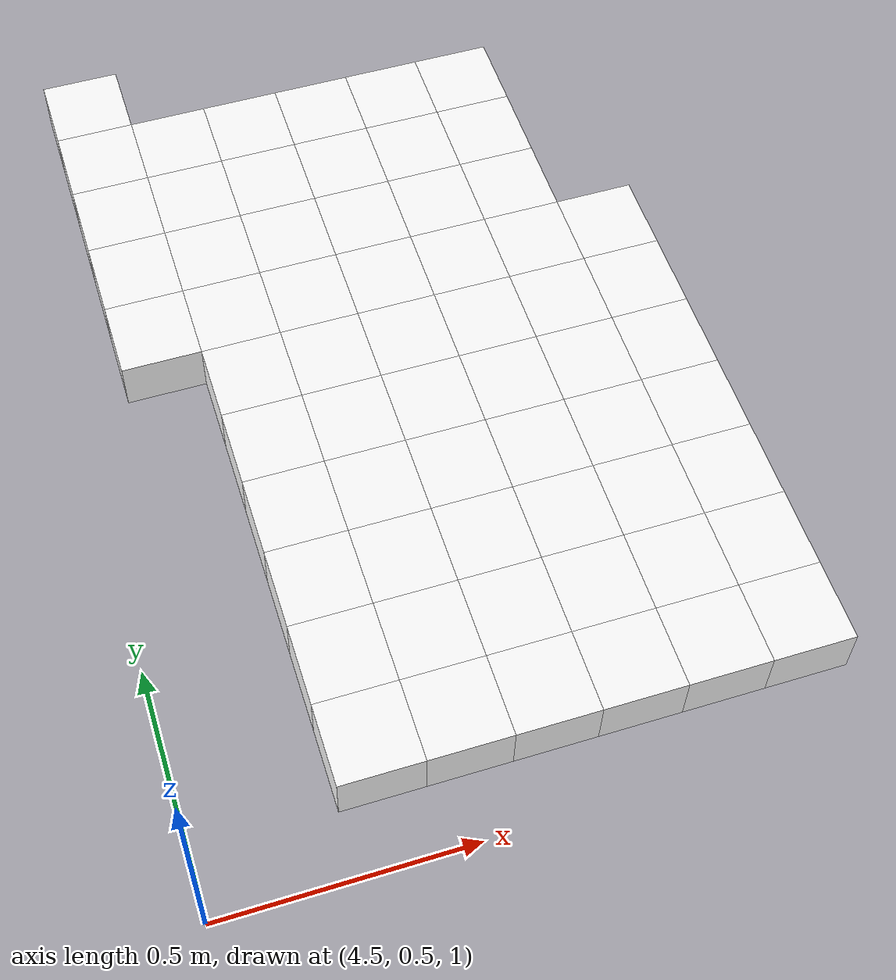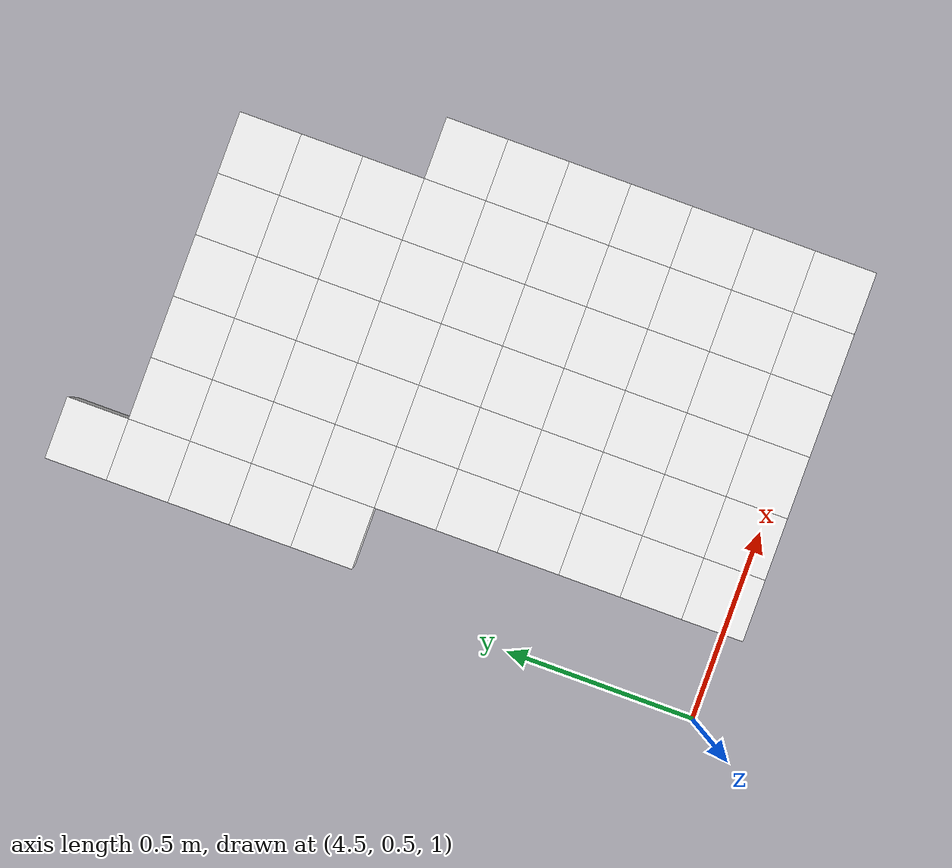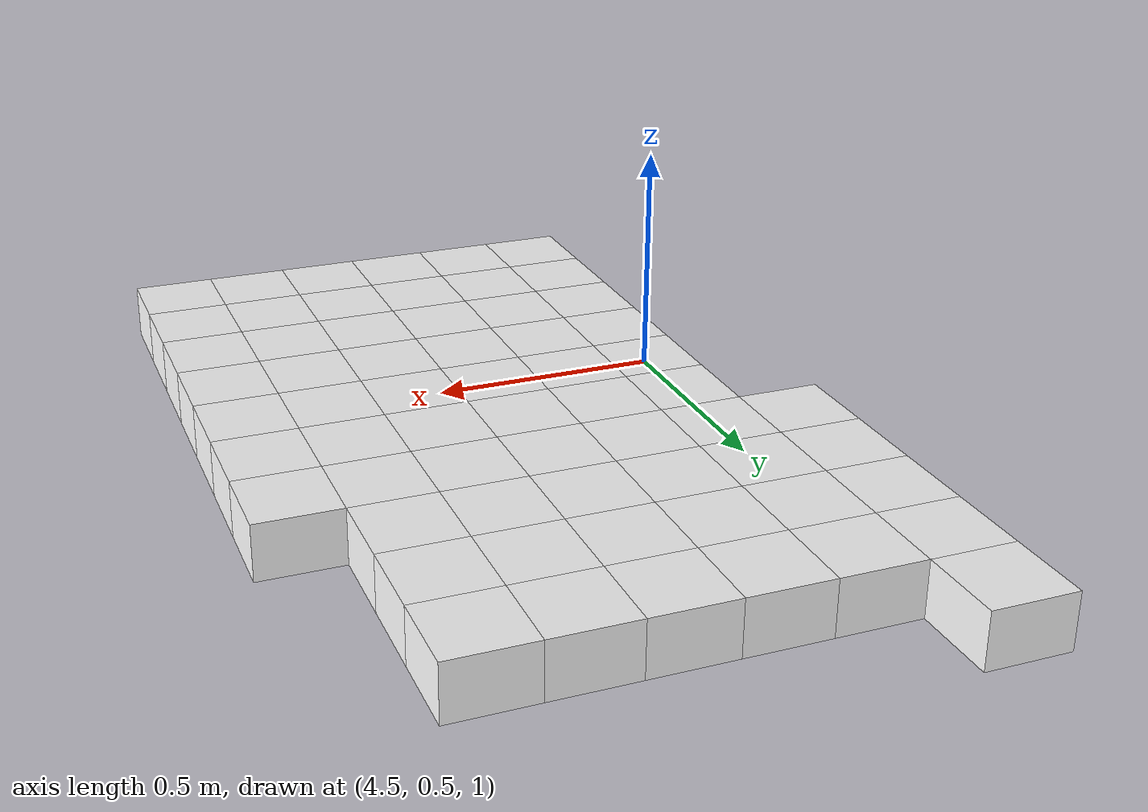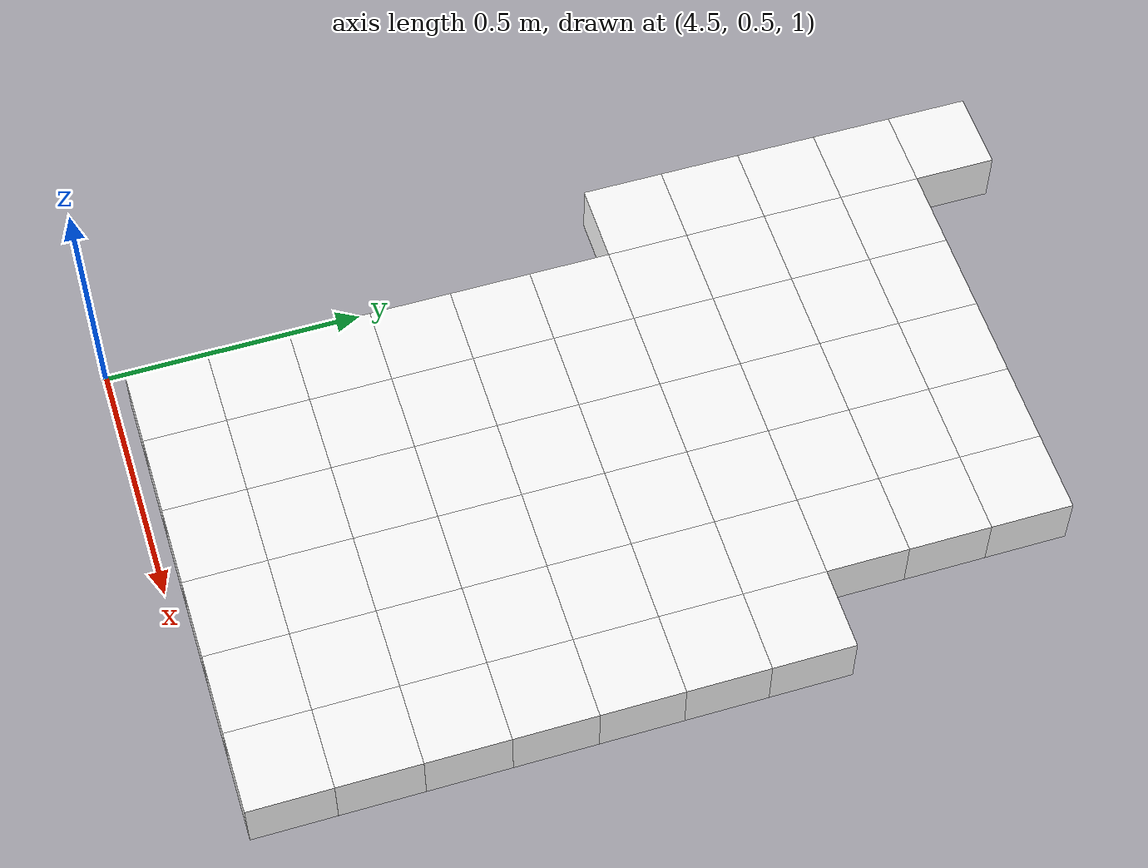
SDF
<sdf version="1.7">
 <world name="default">
  <include><uri>model://sun</uri></include>
  <model name="static_environment">
   <static>true</static>
   <link name="region_808">
    <pose>4.825000000000003 0.6 1.3 0.0 0.0 0.0</pose>
    <collision name="region_808_collision">
     <geometry><box><size>0.15 0.15 0.1</size></box></geometry>
     <surface><friction><ode><mu>1.0</mu><mu2>1.0</mu2></ode></friction></surface>
    </collision>
    <visual name="region_808_visual">
     <geometry><box><size>0.15 0.15 0.1</size></box></geometry>
     <material><ambient>1.0 1.0 1.0 1.0</ambient><diffuse>1.0 1.0 1.0 1.0</diffuse></material>
    </visual>
   </link>
   <link name="region_809">
    <pose>4.975000000000003 0.6 1.3 0.0 0.0 0.0</pose>
    <collision name="region_809_collision">
     <geometry><box><size>0.15 0.15 0.1</size></box></geometry>
     <surface><friction><ode><mu>1.0</mu><mu2>1.0</mu2></ode></friction></surface>
    </collision>
    <visual name="region_809_visual">
     <geometry><box><size>0.15 0.15 0.1</size></box></geometry>
     <material><ambient>1.0 1.0 1.0 1.0</ambient><diffuse>1.0 1.0 1.0 1.0</diffuse></material>
    </visual>
   </link>
   <link name="region_810">
    <pose>5.1250000000000036 0.6 1.3 0.0 0.0 0.0</pose>
    <collision name="region_810_collision">
     <geometry><box><size>0.15 0.15 0.1</size></box></geometry>
     <surface><friction><ode><mu>1.0</mu><mu2>1.0</mu2></ode></friction></surface>
    </collision>
    <visual name="region_810_visual">
     <geometry><box><size>0.15 0.15 0.1</size></box></geometry>
     <material><ambient>1.0 1.0 1.0 1.0</ambient><diffuse>1.0 1.0 1.0 1.0</diffuse></material>
    </visual>
   </link>
   <link name="region_811">
    <pose>5.275000000000004 0.6 1.3 0.0 0.0 0.0</pose>
    <collision name="region_811_collision">
     <geometry><box><size>0.15 0.15 0.1</size></box></geometry>
     <surface><friction><ode><mu>1.0</mu><mu2>1.0</mu2></ode></friction></surface>
    </collision>
    <visual name="region_811_visual">
     <geometry><box><size>0.15 0.15 0.1</size></box></geometry>
     <material><ambient>1.0 1.0 1.0 1.0</ambient><diffuse>1.0 1.0 1.0 1.0</diffuse></material>
    </visual>
   </link>
   <link name="region_812">
    <pose>5.425000000000004 0.6 1.3 0.0 0.0 0.0</pose>
    <collision name="region_812_collision">
     <geometry><box><size>0.15 0.15 0.1</size></box></geometry>
     <surface><friction><ode><mu>1.0</mu><mu2>1.0</mu2></ode></friction></surface>
    </collision>
    <visual name="region_812_visual">
     <geometry><box><size>0.15 0.15 0.1</size></box></geometry>
     <material><ambient>1.0 1.0 1.0 1.0</ambient><diffuse>1.0 1.0 1.0 1.0</diffuse></material>
    </visual>
   </link>
   <link name="region_813">
    <pose>5.575000000000005 0.6 1.3 0.0 0.0 0.0</pose>
    <collision name="region_813_collision">
     <geometry><box><size>0.15 0.15 0.1</size></box></geometry>
     <surface><friction><ode><mu>1.0</mu><mu2>1.0</mu2></ode></friction></surface>
    </collision>
    <visual name="region_813_visual">
     <geometry><box><size>0.15 0.15 0.1</size></box></geometry>
     <material><ambient>1.0 1.0 1.0 1.0</ambient><diffuse>1.0 1.0 1.0 1.0</diffuse></material>
    </visual>
   </link>
   <link name="region_828">
    <pose>4.825000000000003 0.75 1.3 0.0 0.0 0.0</pose>
    <collision name="region_828_collision">
     <geometry><box><size>0.15 0.15 0.1</size></box></geometry>
     <surface><friction><ode><mu>1.0</mu><mu2>1.0</mu2></ode></friction></surface>
    </collision>
    <visual name="region_828_visual">
     <geometry><box><size>0.15 0.15 0.1</size></box></geometry>
     <material><ambient>1.0 1.0 1.0 1.0</ambient><diffuse>1.0 1.0 1.0 1.0</diffuse></material>
    </visual>
   </link>
   <link name="region_829">
    <pose>4.975000000000003 0.75 1.3 0.0 0.0 0.0</pose>
    <collision name="region_829_collision">
     <geometry><box><size>0.15 0.15 0.1</size></box></geometry>
     <surface><friction><ode><mu>1.0</mu><mu2>1.0</mu2></ode></friction></surface>
    </collision>
    <visual name="region_829_visual">
     <geometry><box><size>0.15 0.15 0.1</size></box></geometry>
     <material><ambient>1.0 1.0 1.0 1.0</ambient><diffuse>1.0 1.0 1.0 1.0</diffuse></material>
    </visual>
   </link>
   <link name="region_830">
    <pose>5.1250000000000036 0.75 1.3 0.0 0.0 0.0</pose>
    <collision name="region_830_collision">
     <geometry><box><size>0.15 0.15 0.1</size></box></geometry>
     <surface><friction><ode><mu>1.0</mu><mu2>1.0</mu2></ode></friction></surface>
    </collision>
    <visual name="region_830_visual">
     <geometry><box><size>0.15 0.15 0.1</size></box></geometry>
     <material><ambient>1.0 1.0 1.0 1.0</ambient><diffuse>1.0 1.0 1.0 1.0</diffuse></material>
    </visual>
   </link>
   <link name="region_831">
    <pose>5.275000000000004 0.75 1.3 0.0 0.0 0.0</pose>
    <collision name="region_831_collision">
     <geometry><box><size>0.15 0.15 0.1</size></box></geometry>
     <surface><friction><ode><mu>1.0</mu><mu2>1.0</mu2></ode></friction></surface>
    </collision>
    <visual name="region_831_visual">
     <geometry><box><size>0.15 0.15 0.1</size></box></geometry>
     <material><ambient>1.0 1.0 1.0 1.0</ambient><diffuse>1.0 1.0 1.0 1.0</diffuse></material>
    </visual>
   </link>
   <link name="region_832">
    <pose>5.425000000000004 0.75 1.3 0.0 0.0 0.0</pose>
    <collision name="region_832_collision">
     <geometry><box><size>0.15 0.15 0.1</size></box></geometry>
     <surface><friction><ode><mu>1.0</mu><mu2>1.0</mu2></ode></friction></surface>
    </collision>
    <visual name="region_832_visual">
     <geometry><box><size>0.15 0.15 0.1</size></box></geometry>
     <material><ambient>1.0 1.0 1.0 1.0</ambient><diffuse>1.0 1.0 1.0 1.0</diffuse></material>
    </visual>
   </link>
   <link name="region_833">
    <pose>5.575000000000005 0.75 1.3 0.0 0.0 0.0</pose>
    <collision name="region_833_collision">
     <geometry><box><size>0.15 0.15 0.1</size></box></geometry>
     <surface><friction><ode><mu>1.0</mu><mu2>1.0</mu2></ode></friction></surface>
    </collision>
    <visual name="region_833_visual">
     <geometry><box><size>0.15 0.15 0.1</size></box></geometry>
     <material><ambient>1.0 1.0 1.0 1.0</ambient><diffuse>1.0 1.0 1.0 1.0</diffuse></material>
    </visual>
   </link>
   <link name="region_848">
    <pose>4.825000000000003 0.8999999999999999 1.3 0.0 0.0 0.0</pose>
    <collision name="region_848_collision">
     <geometry><box><size>0.15 0.15 0.1</size></box></geometry>
     <surface><friction><ode><mu>1.0</mu><mu2>1.0</mu2></ode></friction></surface>
    </collision>
    <visual name="region_848_visual">
     <geometry><box><size>0.15 0.15 0.1</size></box></geometry>
     <material><ambient>1.0 1.0 1.0 1.0</ambient><diffuse>1.0 1.0 1.0 1.0</diffuse></material>
    </visual>
   </link>
   <link name="region_849">
    <pose>4.975000000000003 0.8999999999999999 1.3 0.0 0.0 0.0</pose>
    <collision name="region_849_collision">
     <geometry><box><size>0.15 0.15 0.1</size></box></geometry>
     <surface><friction><ode><mu>1.0</mu><mu2>1.0</mu2></ode></friction></surface>
    </collision>
    <visual name="region_849_visual">
     <geometry><box><size>0.15 0.15 0.1</size></box></geometry>
     <material><ambient>1.0 1.0 1.0 1.0</ambient><diffuse>1.0 1.0 1.0 1.0</diffuse></material>
    </visual>
   </link>
   <link name="region_850">
    <pose>5.1250000000000036 0.8999999999999999 1.3 0.0 0.0 0.0</pose>
    <collision name="region_850_collision">
     <geometry><box><size>0.15 0.15 0.1</size></box></geometry>
     <surface><friction><ode><mu>1.0</mu><mu2>1.0</mu2></ode></friction></surface>
    </collision>
    <visual name="region_850_visual">
     <geometry><box><size>0.15 0.15 0.1</size></box></geometry>
     <material><ambient>1.0 1.0 1.0 1.0</ambient><diffuse>1.0 1.0 1.0 1.0</diffuse></material>
    </visual>
   </link>
   <link name="region_851">
    <pose>5.275000000000004 0.8999999999999999 1.3 0.0 0.0 0.0</pose>
    <collision name="region_851_collision">
     <geometry><box><size>0.15 0.15 0.1</size></box></geometry>
     <surface><friction><ode><mu>1.0</mu><mu2>1.0</mu2></ode></friction></surface>
    </collision>
    <visual name="region_851_visual">
     <geometry><box><size>0.15 0.15 0.1</size></box></geometry>
     <material><ambient>1.0 1.0 1.0 1.0</ambient><diffuse>1.0 1.0 1.0 1.0</diffuse></material>
    </visual>
   </link>
   <link name="region_852">
    <pose>5.425000000000004 0.8999999999999999 1.3 0.0 0.0 0.0</pose>
    <collision name="region_852_collision">
     <geometry><box><size>0.15 0.15 0.1</size></box></geometry>
     <surface><friction><ode><mu>1.0</mu><mu2>1.0</mu2></ode></friction></surface>
    </collision>
    <visual name="region_852_visual">
     <geometry><box><size>0.15 0.15 0.1</size></box></geometry>
     <material><ambient>1.0 1.0 1.0 1.0</ambient><diffuse>1.0 1.0 1.0 1.0</diffuse></material>
    </visual>
   </link>
   <link name="region_853">
    <pose>5.575000000000005 0.8999999999999999 1.3 0.0 0.0 0.0</pose>
    <collision name="region_853_collision">
     <geometry><box><size>0.15 0.15 0.1</size></box></geometry>
     <surface><friction><ode><mu>1.0</mu><mu2>1.0</mu2></ode></friction></surface>
    </collision>
    <visual name="region_853_visual">
     <geometry><box><size>0.15 0.15 0.1</size></box></geometry>
     <material><ambient>1.0 1.0 1.0 1.0</ambient><diffuse>1.0 1.0 1.0 1.0</diffuse></material>
    </visual>
   </link>
   <link name="region_868">
    <pose>4.825000000000003 1.0499999999999998 1.3 0.0 0.0 0.0</pose>
    <collision name="region_868_collision">
     <geometry><box><size>0.15 0.15 0.1</size></box></geometry>
     <surface><friction><ode><mu>1.0</mu><mu2>1.0</mu2></ode></friction></surface>
    </collision>
    <visual name="region_868_visual">
     <geometry><box><size>0.15 0.15 0.1</size></box></geometry>
     <material><ambient>1.0 1.0 1.0 1.0</ambient><diffuse>1.0 1.0 1.0 1.0</diffuse></material>
    </visual>
   </link>
   <link name="region_869">
    <pose>4.975000000000003 1.0499999999999998 1.3 0.0 0.0 0.0</pose>
    <collision name="region_869_collision">
     <geometry><box><size>0.15 0.15 0.1</size></box></geometry>
     <surface><friction><ode><mu>1.0</mu><mu2>1.0</mu2></ode></friction></surface>
    </collision>
    <visual name="region_869_visual">
     <geometry><box><size>0.15 0.15 0.1</size></box></geometry>
     <material><ambient>1.0 1.0 1.0 1.0</ambient><diffuse>1.0 1.0 1.0 1.0</diffuse></material>
    </visual>
   </link>
   <link name="region_870">
    <pose>5.1250000000000036 1.0499999999999998 1.3 0.0 0.0 0.0</pose>
    <collision name="region_870_collision">
     <geometry><box><size>0.15 0.15 0.1</size></box></geometry>
     <surface><friction><ode><mu>1.0</mu><mu2>1.0</mu2></ode></friction></surface>
    </collision>
    <visual name="region_870_visual">
     <geometry><box><size>0.15 0.15 0.1</size></box></geometry>
     <material><ambient>1.0 1.0 1.0 1.0</ambient><diffuse>1.0 1.0 1.0 1.0</diffuse></material>
    </visual>
   </link>
   <link name="region_871">
    <pose>5.275000000000004 1.0499999999999998 1.3 0.0 0.0 0.0</pose>
    <collision name="region_871_collision">
     <geometry><box><size>0.15 0.15 0.1</size></box></geometry>
     <surface><friction><ode><mu>1.0</mu><mu2>1.0</mu2></ode></friction></surface>
    </collision>
    <visual name="region_871_visual">
     <geometry><box><size>0.15 0.15 0.1</size></box></geometry>
     <material><ambient>1.0 1.0 1.0 1.0</ambient><diffuse>1.0 1.0 1.0 1.0</diffuse></material>
    </visual>
   </link>
   <link name="region_872">
    <pose>5.425000000000004 1.0499999999999998 1.3 0.0 0.0 0.0</pose>
    <collision name="region_872_collision">
     <geometry><box><size>0.15 0.15 0.1</size></box></geometry>
     <surface><friction><ode><mu>1.0</mu><mu2>1.0</mu2></ode></friction></surface>
    </collision>
    <visual name="region_872_visual">
     <geometry><box><size>0.15 0.15 0.1</size></box></geometry>
     <material><ambient>1.0 1.0 1.0 1.0</ambient><diffuse>1.0 1.0 1.0 1.0</diffuse></material>
    </visual>
   </link>
   <link name="region_873">
    <pose>5.575000000000005 1.0499999999999998 1.3 0.0 0.0 0.0</pose>
    <collision name="region_873_collision">
     <geometry><box><size>0.15 0.15 0.1</size></box></geometry>
     <surface><friction><ode><mu>1.0</mu><mu2>1.0</mu2></ode></friction></surface>
    </collision>
    <visual name="region_873_visual">
     <geometry><box><size>0.15 0.15 0.1</size></box></geometry>
     <material><ambient>1.0 1.0 1.0 1.0</ambient><diffuse>1.0 1.0 1.0 1.0</diffuse></material>
    </visual>
   </link>
   <link name="region_888">
    <pose>4.825000000000003 1.2 1.3 0.0 0.0 0.0</pose>
    <collision name="region_888_collision">
     <geometry><box><size>0.15 0.15 0.1</size></box></geometry>
     <surface><friction><ode><mu>1.0</mu><mu2>1.0</mu2></ode></friction></surface>
    </collision>
    <visual name="region_888_visual">
     <geometry><box><size>0.15 0.15 0.1</size></box></geometry>
     <material><ambient>1.0 1.0 1.0 1.0</ambient><diffuse>1.0 1.0 1.0 1.0</diffuse></material>
    </visual>
   </link>
   <link name="region_889">
    <pose>4.975000000000003 1.2 1.3 0.0 0.0 0.0</pose>
    <collision name="region_889_collision">
     <geometry><box><size>0.15 0.15 0.1</size></box></geometry>
     <surface><friction><ode><mu>1.0</mu><mu2>1.0</mu2></ode></friction></surface>
    </collision>
    <visual name="region_889_visual">
     <geometry><box><size>0.15 0.15 0.1</size></box></geometry>
     <material><ambient>1.0 1.0 1.0 1.0</ambient><diffuse>1.0 1.0 1.0 1.0</diffuse></material>
    </visual>
   </link>
   <link name="region_890">
    <pose>5.1250000000000036 1.2 1.3 0.0 0.0 0.0</pose>
    <collision name="region_890_collision">
     <geometry><box><size>0.15 0.15 0.1</size></box></geometry>
     <surface><friction><ode><mu>1.0</mu><mu2>1.0</mu2></ode></friction></surface>
    </collision>
    <visual name="region_890_visual">
     <geometry><box><size>0.15 0.15 0.1</size></box></geometry>
     <material><ambient>1.0 1.0 1.0 1.0</ambient><diffuse>1.0 1.0 1.0 1.0</diffuse></material>
    </visual>
   </link>
   <link name="region_891">
    <pose>5.275000000000004 1.2 1.3 0.0 0.0 0.0</pose>
    <collision name="region_891_collision">
     <geometry><box><size>0.15 0.15 0.1</size></box></geometry>
     <surface><friction><ode><mu>1.0</mu><mu2>1.0</mu2></ode></friction></surface>
    </collision>
    <visual name="region_891_visual">
     <geometry><box><size>0.15 0.15 0.1</size></box></geometry>
     <material><ambient>1.0 1.0 1.0 1.0</ambient><diffuse>1.0 1.0 1.0 1.0</diffuse></material>
    </visual>
   </link>
   <link name="region_892">
    <pose>5.425000000000004 1.2 1.3 0.0 0.0 0.0</pose>
    <collision name="region_892_collision">
     <geometry><box><size>0.15 0.15 0.1</size></box></geometry>
     <surface><friction><ode><mu>1.0</mu><mu2>1.0</mu2></ode></friction></surface>
    </collision>
    <visual name="region_892_visual">
     <geometry><box><size>0.15 0.15 0.1</size></box></geometry>
     <material><ambient>1.0 1.0 1.0 1.0</ambient><diffuse>1.0 1.0 1.0 1.0</diffuse></material>
    </visual>
   </link>
   <link name="region_893">
    <pose>5.575000000000005 1.2 1.3 0.0 0.0 0.0</pose>
    <collision name="region_893_collision">
     <geometry><box><size>0.15 0.15 0.1</size></box></geometry>
     <surface><friction><ode><mu>1.0</mu><mu2>1.0</mu2></ode></friction></surface>
    </collision>
    <visual name="region_893_visual">
     <geometry><box><size>0.15 0.15 0.1</size></box></geometry>
     <material><ambient>1.0 1.0 1.0 1.0</ambient><diffuse>1.0 1.0 1.0 1.0</diffuse></material>
    </visual>
   </link>
   <link name="region_908">
    <pose>4.825000000000003 1.35 1.3 0.0 0.0 0.0</pose>
    <collision name="region_908_collision">
     <geometry><box><size>0.15 0.15 0.1</size></box></geometry>
     <surface><friction><ode><mu>1.0</mu><mu2>1.0</mu2></ode></friction></surface>
    </collision>
    <visual name="region_908_visual">
     <geometry><box><size>0.15 0.15 0.1</size></box></geometry>
     <material><ambient>1.0 1.0 1.0 1.0</ambient><diffuse>1.0 1.0 1.0 1.0</diffuse></material>
    </visual>
   </link>
   <link name="region_909">
    <pose>4.975000000000003 1.35 1.3 0.0 0.0 0.0</pose>
    <collision name="region_909_collision">
     <geometry><box><size>0.15 0.15 0.1</size></box></geometry>
     <surface><friction><ode><mu>1.0</mu><mu2>1.0</mu2></ode></friction></surface>
    </collision>
    <visual name="region_909_visual">
     <geometry><box><size>0.15 0.15 0.1</size></box></geometry>
     <material><ambient>1.0 1.0 1.0 1.0</ambient><diffuse>1.0 1.0 1.0 1.0</diffuse></material>
    </visual>
   </link>
   <link name="region_910">
    <pose>5.1250000000000036 1.35 1.3 0.0 0.0 0.0</pose>
    <collision name="region_910_collision">
     <geometry><box><size>0.15 0.15 0.1</size></box></geometry>
     <surface><friction><ode><mu>1.0</mu><mu2>1.0</mu2></ode></friction></surface>
    </collision>
    <visual name="region_910_visual">
     <geometry><box><size>0.15 0.15 0.1</size></box></geometry>
     <material><ambient>1.0 1.0 1.0 1.0</ambient><diffuse>1.0 1.0 1.0 1.0</diffuse></material>
    </visual>
   </link>
   <link name="region_911">
    <pose>5.275000000000004 1.35 1.3 0.0 0.0 0.0</pose>
    <collision name="region_911_collision">
     <geometry><box><size>0.15 0.15 0.1</size></box></geometry>
     <surface><friction><ode><mu>1.0</mu><mu2>1.0</mu2></ode></friction></surface>
    </collision>
    <visual name="region_911_visual">
     <geometry><box><size>0.15 0.15 0.1</size></box></geometry>
     <material><ambient>1.0 1.0 1.0 1.0</ambient><diffuse>1.0 1.0 1.0 1.0</diffuse></material>
    </visual>
   </link>
   <link name="region_912">
    <pose>5.425000000000004 1.35 1.3 0.0 0.0 0.0</pose>
    <collision name="region_912_collision">
     <geometry><box><size>0.15 0.15 0.1</size></box></geometry>
     <surface><friction><ode><mu>1.0</mu><mu2>1.0</mu2></ode></friction></surface>
    </collision>
    <visual name="region_912_visual">
     <geometry><box><size>0.15 0.15 0.1</size></box></geometry>
     <material><ambient>1.0 1.0 1.0 1.0</ambient><diffuse>1.0 1.0 1.0 1.0</diffuse></material>
    </visual>
   </link>
   <link name="region_913">
    <pose>5.575000000000005 1.35 1.3 0.0 0.0 0.0</pose>
    <collision name="region_913_collision">
     <geometry><box><size>0.15 0.15 0.1</size></box></geometry>
     <surface><friction><ode><mu>1.0</mu><mu2>1.0</mu2></ode></friction></surface>
    </collision>
    <visual name="region_913_visual">
     <geometry><box><size>0.15 0.15 0.1</size></box></geometry>
     <material><ambient>1.0 1.0 1.0 1.0</ambient><diffuse>1.0 1.0 1.0 1.0</diffuse></material>
    </visual>
   </link>
   <link name="region_927">
    <pose>4.6750000000000025 1.5 1.3 0.0 0.0 0.0</pose>
    <collision name="region_927_collision">
     <geometry><box><size>0.15 0.15 0.1</size></box></geometry>
     <surface><friction><ode><mu>1.0</mu><mu2>1.0</mu2></ode></friction></surface>
    </collision>
    <visual name="region_927_visual">
     <geometry><box><size>0.15 0.15 0.1</size></box></geometry>
     <material><ambient>1.0 1.0 1.0 1.0</ambient><diffuse>1.0 1.0 1.0 1.0</diffuse></material>
    </visual>
   </link>
   <link name="region_928">
    <pose>4.825000000000003 1.5 1.3 0.0 0.0 0.0</pose>
    <collision name="region_928_collision">
     <geometry><box><size>0.15 0.15 0.1</size></box></geometry>
     <surface><friction><ode><mu>1.0</mu><mu2>1.0</mu2></ode></friction></surface>
    </collision>
    <visual name="region_928_visual">
     <geometry><box><size>0.15 0.15 0.1</size></box></geometry>
     <material><ambient>1.0 1.0 1.0 1.0</ambient><diffuse>1.0 1.0 1.0 1.0</diffuse></material>
    </visual>
   </link>
   <link name="region_929">
    <pose>4.975000000000003 1.5 1.3 0.0 0.0 0.0</pose>
    <collision name="region_929_collision">
     <geometry><box><size>0.15 0.15 0.1</size></box></geometry>
     <surface><friction><ode><mu>1.0</mu><mu2>1.0</mu2></ode></friction></surface>
    </collision>
    <visual name="region_929_visual">
     <geometry><box><size>0.15 0.15 0.1</size></box></geometry>
     <material><ambient>1.0 1.0 1.0 1.0</ambient><diffuse>1.0 1.0 1.0 1.0</diffuse></material>
    </visual>
   </link>
   <link name="region_930">
    <pose>5.1250000000000036 1.5 1.3 0.0 0.0 0.0</pose>
    <collision name="region_930_collision">
     <geometry><box><size>0.15 0.15 0.1</size></box></geometry>
     <surface><friction><ode><mu>1.0</mu><mu2>1.0</mu2></ode></friction></surface>
    </collision>
    <visual name="region_930_visual">
     <geometry><box><size>0.15 0.15 0.1</size></box></geometry>
     <material><ambient>1.0 1.0 1.0 1.0</ambient><diffuse>1.0 1.0 1.0 1.0</diffuse></material>
    </visual>
   </link>
   <link name="region_931">
    <pose>5.275000000000004 1.5 1.3 0.0 0.0 0.0</pose>
    <collision name="region_931_collision">
     <geometry><box><size>0.15 0.15 0.1</size></box></geometry>
     <surface><friction><ode><mu>1.0</mu><mu2>1.0</mu2></ode></friction></surface>
    </collision>
    <visual name="region_931_visual">
     <geometry><box><size>0.15 0.15 0.1</size></box></geometry>
     <material><ambient>1.0 1.0 1.0 1.0</ambient><diffuse>1.0 1.0 1.0 1.0</diffuse></material>
    </visual>
   </link>
   <link name="region_932">
    <pose>5.425000000000004 1.5 1.3 0.0 0.0 0.0</pose>
    <collision name="region_932_collision">
     <geometry><box><size>0.15 0.15 0.1</size></box></geometry>
     <surface><friction><ode><mu>1.0</mu><mu2>1.0</mu2></ode></friction></surface>
    </collision>
    <visual name="region_932_visual">
     <geometry><box><size>0.15 0.15 0.1</size></box></geometry>
     <material><ambient>1.0 1.0 1.0 1.0</ambient><diffuse>1.0 1.0 1.0 1.0</diffuse></material>
    </visual>
   </link>
   <link name="region_933">
    <pose>5.575000000000005 1.5 1.3 0.0 0.0 0.0</pose>
    <collision name="region_933_collision">
     <geometry><box><size>0.15 0.15 0.1</size></box></geometry>
     <surface><friction><ode><mu>1.0</mu><mu2>1.0</mu2></ode></friction></surface>
    </collision>
    <visual name="region_933_visual">
     <geometry><box><size>0.15 0.15 0.1</size></box></geometry>
     <material><ambient>1.0 1.0 1.0 1.0</ambient><diffuse>1.0 1.0 1.0 1.0</diffuse></material>
    </visual>
   </link>
   <link name="region_947">
    <pose>4.6750000000000025 1.65 1.3 0.0 0.0 0.0</pose>
    <collision name="region_947_collision">
     <geometry><box><size>0.15 0.15 0.1</size></box></geometry>
     <surface><friction><ode><mu>1.0</mu><mu2>1.0</mu2></ode></friction></surface>
    </collision>
    <visual name="region_947_visual">
     <geometry><box><size>0.15 0.15 0.1</size></box></geometry>
     <material><ambient>1.0 1.0 1.0 1.0</ambient><diffuse>1.0 1.0 1.0 1.0</diffuse></material>
    </visual>
   </link>
   <link name="region_948">
    <pose>4.825000000000003 1.65 1.3 0.0 0.0 0.0</pose>
    <collision name="region_948_collision">
     <geometry><box><size>0.15 0.15 0.1</size></box></geometry>
     <surface><friction><ode><mu>1.0</mu><mu2>1.0</mu2></ode></friction></surface>
    </collision>
    <visual name="region_948_visual">
     <geometry><box><size>0.15 0.15 0.1</size></box></geometry>
     <material><ambient>1.0 1.0 1.0 1.0</ambient><diffuse>1.0 1.0 1.0 1.0</diffuse></material>
    </visual>
   </link>
   <link name="region_949">
    <pose>4.975000000000003 1.65 1.3 0.0 0.0 0.0</pose>
    <collision name="region_949_collision">
     <geometry><box><size>0.15 0.15 0.1</size></box></geometry>
     <surface><friction><ode><mu>1.0</mu><mu2>1.0</mu2></ode></friction></surface>
    </collision>
    <visual name="region_949_visual">
     <geometry><box><size>0.15 0.15 0.1</size></box></geometry>
     <material><ambient>1.0 1.0 1.0 1.0</ambient><diffuse>1.0 1.0 1.0 1.0</diffuse></material>
    </visual>
   </link>
   <link name="region_950">
    <pose>5.1250000000000036 1.65 1.3 0.0 0.0 0.0</pose>
    <collision name="region_950_collision">
     <geometry><box><size>0.15 0.15 0.1</size></box></geometry>
     <surface><friction><ode><mu>1.0</mu><mu2>1.0</mu2></ode></friction></surface>
    </collision>
    <visual name="region_950_visual">
     <geometry><box><size>0.15 0.15 0.1</size></box></geometry>
     <material><ambient>1.0 1.0 1.0 1.0</ambient><diffuse>1.0 1.0 1.0 1.0</diffuse></material>
    </visual>
   </link>
   <link name="region_951">
    <pose>5.275000000000004 1.65 1.3 0.0 0.0 0.0</pose>
    <collision name="region_951_collision">
     <geometry><box><size>0.15 0.15 0.1</size></box></geometry>
     <surface><friction><ode><mu>1.0</mu><mu2>1.0</mu2></ode></friction></surface>
    </collision>
    <visual name="region_951_visual">
     <geometry><box><size>0.15 0.15 0.1</size></box></geometry>
     <material><ambient>1.0 1.0 1.0 1.0</ambient><diffuse>1.0 1.0 1.0 1.0</diffuse></material>
    </visual>
   </link>
   <link name="region_952">
    <pose>5.425000000000004 1.65 1.3 0.0 0.0 0.0</pose>
    <collision name="region_952_collision">
     <geometry><box><size>0.15 0.15 0.1</size></box></geometry>
     <surface><friction><ode><mu>1.0</mu><mu2>1.0</mu2></ode></friction></surface>
    </collision>
    <visual name="region_952_visual">
     <geometry><box><size>0.15 0.15 0.1</size></box></geometry>
     <material><ambient>1.0 1.0 1.0 1.0</ambient><diffuse>1.0 1.0 1.0 1.0</diffuse></material>
    </visual>
   </link>
   <link name="region_967">
    <pose>4.6750000000000025 1.7999999999999998 1.3 0.0 0.0 0.0</pose>
    <collision name="region_967_collision">
     <geometry><box><size>0.15 0.15 0.1</size></box></geometry>
     <surface><friction><ode><mu>1.0</mu><mu2>1.0</mu2></ode></friction></surface>
    </collision>
    <visual name="region_967_visual">
     <geometry><box><size>0.15 0.15 0.1</size></box></geometry>
     <material><ambient>1.0 1.0 1.0 1.0</ambient><diffuse>1.0 1.0 1.0 1.0</diffuse></material>
    </visual>
   </link>
   <link name="region_968">
    <pose>4.825000000000003 1.7999999999999998 1.3 0.0 0.0 0.0</pose>
    <collision name="region_968_collision">
     <geometry><box><size>0.15 0.15 0.1</size></box></geometry>
     <surface><friction><ode><mu>1.0</mu><mu2>1.0</mu2></ode></friction></surface>
    </collision>
    <visual name="region_968_visual">
     <geometry><box><size>0.15 0.15 0.1</size></box></geometry>
     <material><ambient>1.0 1.0 1.0 1.0</ambient><diffuse>1.0 1.0 1.0 1.0</diffuse></material>
    </visual>
   </link>
   <link name="region_969">
    <pose>4.975000000000003 1.7999999999999998 1.3 0.0 0.0 0.0</pose>
    <collision name="region_969_collision">
     <geometry><box><size>0.15 0.15 0.1</size></box></geometry>
     <surface><friction><ode><mu>1.0</mu><mu2>1.0</mu2></ode></friction></surface>
    </collision>
    <visual name="region_969_visual">
     <geometry><box><size>0.15 0.15 0.1</size></box></geometry>
     <material><ambient>1.0 1.0 1.0 1.0</ambient><diffuse>1.0 1.0 1.0 1.0</diffuse></material>
    </visual>
   </link>
   <link name="region_970">
    <pose>5.1250000000000036 1.7999999999999998 1.3 0.0 0.0 0.0</pose>
    <collision name="region_970_collision">
     <geometry><box><size>0.15 0.15 0.1</size></box></geometry>
     <surface><friction><ode><mu>1.0</mu><mu2>1.0</mu2></ode></friction></surface>
    </collision>
    <visual name="region_970_visual">
     <geometry><box><size>0.15 0.15 0.1</size></box></geometry>
     <material><ambient>1.0 1.0 1.0 1.0</ambient><diffuse>1.0 1.0 1.0 1.0</diffuse></material>
    </visual>
   </link>
   <link name="region_971">
    <pose>5.275000000000004 1.7999999999999998 1.3 0.0 0.0 0.0</pose>
    <collision name="region_971_collision">
     <geometry><box><size>0.15 0.15 0.1</size></box></geometry>
     <surface><friction><ode><mu>1.0</mu><mu2>1.0</mu2></ode></friction></surface>
    </collision>
    <visual name="region_971_visual">
     <geometry><box><size>0.15 0.15 0.1</size></box></geometry>
     <material><ambient>1.0 1.0 1.0 1.0</ambient><diffuse>1.0 1.0 1.0 1.0</diffuse></material>
    </visual>
   </link>
   <link name="region_972">
    <pose>5.425000000000004 1.7999999999999998 1.3 0.0 0.0 0.0</pose>
    <collision name="region_972_collision">
     <geometry><box><size>0.15 0.15 0.1</size></box></geometry>
     <surface><friction><ode><mu>1.0</mu><mu2>1.0</mu2></ode></friction></surface>
    </collision>
    <visual name="region_972_visual">
     <geometry><box><size>0.15 0.15 0.1</size></box></geometry>
     <material><ambient>1.0 1.0 1.0 1.0</ambient><diffuse>1.0 1.0 1.0 1.0</diffuse></material>
    </visual>
   </link>
   <link name="region_987">
    <pose>4.6750000000000025 1.9499999999999997 1.3 0.0 0.0 0.0</pose>
    <collision name="region_987_collision">
     <geometry><box><size>0.15 0.15 0.1</size></box></geometry>
     <surface><friction><ode><mu>1.0</mu><mu2>1.0</mu2></ode></friction></surface>
    </collision>
    <visual name="region_987_visual">
     <geometry><box><size>0.15 0.15 0.1</size></box></geometry>
     <material><ambient>1.0 1.0 1.0 1.0</ambient><diffuse>1.0 1.0 1.0 1.0</diffuse></material>
    </visual>
   </link>
   <link name="region_988">
    <pose>4.825000000000003 1.9499999999999997 1.3 0.0 0.0 0.0</pose>
    <collision name="region_988_collision">
     <geometry><box><size>0.15 0.15 0.1</size></box></geometry>
     <surface><friction><ode><mu>1.0</mu><mu2>1.0</mu2></ode></friction></surface>
    </collision>
    <visual name="region_988_visual">
     <geometry><box><size>0.15 0.15 0.1</size></box></geometry>
     <material><ambient>1.0 1.0 1.0 1.0</ambient><diffuse>1.0 1.0 1.0 1.0</diffuse></material>
    </visual>
   </link>
   <link name="region_989">
    <pose>4.975000000000003 1.9499999999999997 1.3 0.0 0.0 0.0</pose>
    <collision name="region_989_collision">
     <geometry><box><size>0.15 0.15 0.1</size></box></geometry>
     <surface><friction><ode><mu>1.0</mu><mu2>1.0</mu2></ode></friction></surface>
    </collision>
    <visual name="region_989_visual">
     <geometry><box><size>0.15 0.15 0.1</size></box></geometry>
     <material><ambient>1.0 1.0 1.0 1.0</ambient><diffuse>1.0 1.0 1.0 1.0</diffuse></material>
    </visual>
   </link>
   <link name="region_990">
    <pose>5.1250000000000036 1.9499999999999997 1.3 0.0 0.0 0.0</pose>
    <collision name="region_990_collision">
     <geometry><box><size>0.15 0.15 0.1</size></box></geometry>
     <surface><friction><ode><mu>1.0</mu><mu2>1.0</mu2></ode></friction></surface>
    </collision>
    <visual name="region_990_visual">
     <geometry><box><size>0.15 0.15 0.1</size></box></geometry>
     <material><ambient>1.0 1.0 1.0 1.0</ambient><diffuse>1.0 1.0 1.0 1.0</diffuse></material>
    </visual>
   </link>
   <link name="region_991">
    <pose>5.275000000000004 1.9499999999999997 1.3 0.0 0.0 0.0</pose>
    <collision name="region_991_collision">
     <geometry><box><size>0.15 0.15 0.1</size></box></geometry>
     <surface><friction><ode><mu>1.0</mu><mu2>1.0</mu2></ode></friction></surface>
    </collision>
    <visual name="region_991_visual">
     <geometry><box><size>0.15 0.15 0.1</size></box></geometry>
     <material><ambient>1.0 1.0 1.0 1.0</ambient><diffuse>1.0 1.0 1.0 1.0</diffuse></material>
    </visual>
   </link>
   <link name="region_992">
    <pose>5.425000000000004 1.9499999999999997 1.3 0.0 0.0 0.0</pose>
    <collision name="region_992_collision">
     <geometry><box><size>0.15 0.15 0.1</size></box></geometry>
     <surface><friction><ode><mu>1.0</mu><mu2>1.0</mu2></ode></friction></surface>
    </collision>
    <visual name="region_992_visual">
     <geometry><box><size>0.15 0.15 0.1</size></box></geometry>
     <material><ambient>1.0 1.0 1.0 1.0</ambient><diffuse>1.0 1.0 1.0 1.0</diffuse></material>
    </visual>
   </link>
   <link name="region_1007">
    <pose>4.6750000000000025 2.0999999999999996 1.3 0.0 0.0 0.0</pose>
    <collision name="region_1007_collision">
     <geometry><box><size>0.15 0.15 0.1</size></box></geometry>
     <surface><friction><ode><mu>1.0</mu><mu2>1.0</mu2></ode></friction></surface>
    </collision>
    <visual name="region_1007_visual">
     <geometry><box><size>0.15 0.15 0.1</size></box></geometry>
     <material><ambient>1.0 1.0 1.0 1.0</ambient><diffuse>1.0 1.0 1.0 1.0</diffuse></material>
    </visual>
   </link>
  </model>
 </world>
</sdf>
